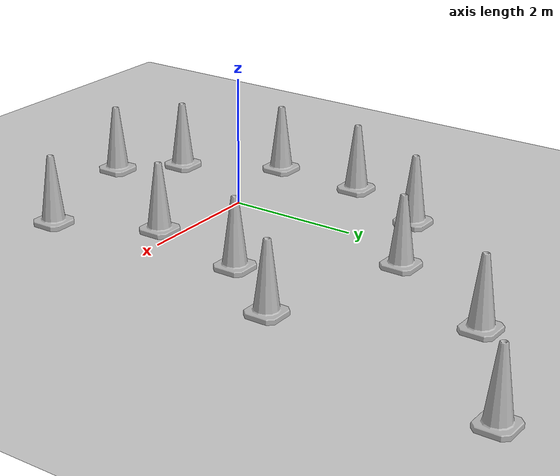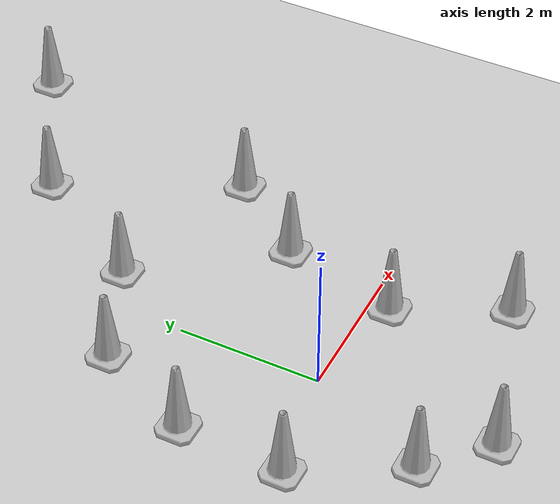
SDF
<sdf version="1.7">
 <world name="default">
  <light name="sun" type="directional">
   <pose>0 0 10 0 -0 0</pose>
   <diffuse>0.8 0.8 0.8 1</diffuse>
   <specular>0.2 0.2 0.2 1</specular>
   <attenuation>
    <range>1000</range>
    <constant>0.9</constant>
    <linear>0.01</linear>
    <quadratic>0.001</quadratic>
   </attenuation>
   <direction>-0.5 0.1 -0.9</direction>
   <spot><inner_angle>0</inner_angle><outer_angle>0</outer_angle><falloff>0</falloff></spot>
  </light>
  <model name="ground_plane">
   <static>1</static>
   <link name="link">
    <collision name="collision">
     <geometry><plane><normal>0 0 1</normal><size>100 100</size></plane></geometry>
     <surface><friction><ode><mu>100</mu><mu2>50</mu2></ode></friction></surface>
    </collision>
    <visual name="visual">
     <cast_shadows>0</cast_shadows>
     <geometry><plane><normal>0 0 1</normal><size>100 100</size></plane></geometry>
     <material>
      <script><uri>file://media/materials/scripts/gazebo.material</uri><name>Gazebo/Grey</name></script>
     </material>
    </visual>
   </link>
  </model>
  <gravity>0 0 -9.8</gravity>
  <magnetic_field>6e-06 2.3e-05 -4.2e-05</magnetic_field>
  <atmosphere type="adiabatic"/>
  <physics type="ode">
   <max_step_size>0.001</max_step_size>
   <real_time_factor>1</real_time_factor>
   <real_time_update_rate>1000</real_time_update_rate>
  </physics>
  <scene><ambient>0.4 0.4 0.4 1</ambient><background>0.7 0.7 0.7 1</background><shadows>1</shadows></scene>
  <audio><device>default</device></audio>
  <spherical_coordinates>
   <surface_model>EARTH_WGS84</surface_model>
   <latitude_deg>0</latitude_deg>
   <longitude_deg>0</longitude_deg>
   <elevation>0</elevation>
   <heading_deg>0</heading_deg>
  </spherical_coordinates>
  <model name="Construction Cone">
   <link name="link">
    <collision name="collision">
     <geometry>
      <mesh><scale>10 10 10</scale><uri>model://construction_cone/meshes/construction_cone.dae</uri></mesh>
     </geometry>
    </collision>
    <visual name="visual">
     <geometry>
      <mesh><scale>10 10 10</scale><uri>model://construction_cone/meshes/construction_cone.dae</uri></mesh>
     </geometry>
    </visual>
    <inertial>
     <inertia><ixx>1</ixx><ixy>0</ixy><ixz>0</ixz><iyy>1</iyy><iyz>0</iyz><izz>1</izz></inertia>
     <mass>1</mass>
    </inertial>
   </link>
   <pose>1.58392 -0.291198 0 0 -0 0</pose>
  </model>
  <model name="Construction Cone_0">
   <link name="link">
    <collision name="collision">
     <geometry>
      <mesh><scale>10 10 10</scale><uri>model://construction_cone/meshes/construction_cone.dae</uri></mesh>
     </geometry>
    </collision>
    <visual name="visual">
     <geometry>
      <mesh><scale>10 10 10</scale><uri>model://construction_cone/meshes/construction_cone.dae</uri></mesh>
     </geometry>
    </visual>
    <inertial>
     <inertia><ixx>1</ixx><ixy>0</ixy><ixz>0</ixz><iyy>1</iyy><iyz>0</iyz><izz>1</izz></inertia>
     <mass>1</mass>
    </inertial>
   </link>
   <pose>-1.56962 -0.280984 -0 0 0 -0.004116</pose>
  </model>
  <model name="Construction Cone_0_clone">
   <link name="link">
    <collision name="collision">
     <geometry>
      <mesh><scale>10 10 10</scale><uri>model://construction_cone/meshes/construction_cone.dae</uri></mesh>
     </geometry>
    </collision>
    <visual name="visual">
     <geometry>
      <mesh><scale>10 10 10</scale><uri>model://construction_cone/meshes/construction_cone.dae</uri></mesh>
     </geometry>
    </visual>
    <inertial>
     <inertia><ixx>1</ixx><ixy>0</ixy><ixz>0</ixz><iyy>1</iyy><iyz>0</iyz><izz>1</izz></inertia>
     <mass>1</mass>
    </inertial>
   </link>
   <pose>-1.51175 1.20086 -0 0 -0 0.002491</pose>
  </model>
  <model name="Construction Cone_0_clone_0">
   <link name="link">
    <collision name="collision">
     <geometry>
      <mesh><scale>10 10 10</scale><uri>model://construction_cone/meshes/construction_cone.dae</uri></mesh>
     </geometry>
    </collision>
    <visual name="visual">
     <geometry>
      <mesh><scale>10 10 10</scale><uri>model://construction_cone/meshes/construction_cone.dae</uri></mesh>
     </geometry>
    </visual>
    <inertial>
     <inertia><ixx>1</ixx><ixy>0</ixy><ixz>0</ixz><iyy>1</iyy><iyz>0</iyz><izz>1</izz></inertia>
     <mass>1</mass>
    </inertial>
   </link>
   <pose>-0.845651 2.60897 -1e-06 3e-06 -0 0</pose>
  </model>
  <model name="Construction Cone_0_clone_1">
   <link name="link">
    <collision name="collision">
     <geometry>
      <mesh><scale>10 10 10</scale><uri>model://construction_cone/meshes/construction_cone.dae</uri></mesh>
     </geometry>
    </collision>
    <visual name="visual">
     <geometry>
      <mesh><scale>10 10 10</scale><uri>model://construction_cone/meshes/construction_cone.dae</uri></mesh>
     </geometry>
    </visual>
    <inertial>
     <inertia><ixx>1</ixx><ixy>0</ixy><ixz>0</ixz><iyy>1</iyy><iyz>0</iyz><izz>1</izz></inertia>
     <mass>1</mass>
    </inertial>
   </link>
   <pose>0.59113 3.23534 -0 0 -1e-06 0</pose>
  </model>
  <model name="Construction Cone_0_clone_2">
   <link name="link">
    <collision name="collision">
     <geometry>
      <mesh><scale>10 10 10</scale><uri>model://construction_cone/meshes/construction_cone.dae</uri></mesh>
     </geometry>
    </collision>
    <visual name="visual">
     <geometry>
      <mesh><scale>10 10 10</scale><uri>model://construction_cone/meshes/construction_cone.dae</uri></mesh>
     </geometry>
    </visual>
    <inertial>
     <inertia><ixx>1</ixx><ixy>0</ixy><ixz>0</ixz><iyy>1</iyy><iyz>0</iyz><izz>1</izz></inertia>
     <mass>1</mass>
    </inertial>
   </link>
   <pose>1.98829 1.38298 -5e-06 4e-06 -0 0</pose>
  </model>
  <model name="Construction Cone_0_clone_3">
   <link name="link">
    <collision name="collision">
     <geometry>
      <mesh><scale>10 10 10</scale><uri>model://construction_cone/meshes/construction_cone.dae</uri></mesh>
     </geometry>
    </collision>
    <visual name="visual">
     <geometry>
      <mesh><scale>10 10 10</scale><uri>model://construction_cone/meshes/construction_cone.dae</uri></mesh>
     </geometry>
    </visual>
    <inertial>
     <inertia><ixx>1</ixx><ixy>0</ixy><ixz>0</ixz><iyy>1</iyy><iyz>0</iyz><izz>1</izz></inertia>
     <mass>1</mass>
    </inertial>
   </link>
   <pose>2.9071 2.56762 -0 0 -1e-06 0</pose>
  </model>
  <model name="Construction Cone_0_clone_4">
   <link name="link">
    <collision name="collision">
     <geometry>
      <mesh><scale>10 10 10</scale><uri>model://construction_cone/meshes/construction_cone.dae</uri></mesh>
     </geometry>
    </collision>
    <visual name="visual">
     <geometry>
      <mesh><scale>10 10 10</scale><uri>model://construction_cone/meshes/construction_cone.dae</uri></mesh>
     </geometry>
    </visual>
    <inertial>
     <inertia><ixx>1</ixx><ixy>0</ixy><ixz>0</ixz><iyy>1</iyy><iyz>0</iyz><izz>1</izz></inertia>
     <mass>1</mass>
    </inertial>
   </link>
   <pose>1.69152 5.03903 -0 0 -1e-06 0</pose>
  </model>
  <model name="Construction Cone_0_clone_5">
   <link name="link">
    <collision name="collision">
     <geometry>
      <mesh><scale>10 10 10</scale><uri>model://construction_cone/meshes/construction_cone.dae</uri></mesh>
     </geometry>
    </collision>
    <visual name="visual">
     <geometry>
      <mesh><scale>10 10 10</scale><uri>model://construction_cone/meshes/construction_cone.dae</uri></mesh>
     </geometry>
    </visual>
    <inertial>
     <inertia><ixx>1</ixx><ixy>0</ixy><ixz>0</ixz><iyy>1</iyy><iyz>0</iyz><izz>1</izz></inertia>
     <mass>1</mass>
    </inertial>
   </link>
   <pose>-0.766139 -1.69879 -0 0 -0 0</pose>
  </model>
  <model name="Construction Cone_0_clone_6">
   <link name="link">
    <collision name="collision">
     <geometry>
      <mesh><scale>10 10 10</scale><uri>model://construction_cone/meshes/construction_cone.dae</uri></mesh>
     </geometry>
    </collision>
    <visual name="visual">
     <geometry>
      <mesh><scale>10 10 10</scale><uri>model://construction_cone/meshes/construction_cone.dae</uri></mesh>
     </geometry>
    </visual>
    <inertial>
     <inertia><ixx>1</ixx><ixy>0</ixy><ixz>0</ixz><iyy>1</iyy><iyz>0</iyz><izz>1</izz></inertia>
     <mass>1</mass>
    </inertial>
   </link>
   <pose>0.011972 -2.44948 -0 0 -1e-06 0</pose>
  </model>
  <model name="Construction Cone_0_clone_7">
   <link name="link">
    <collision name="collision">
     <geometry>
      <mesh><scale>10 10 10</scale><uri>model://construction_cone/meshes/construction_cone.dae</uri></mesh>
     </geometry>
    </collision>
    <visual name="visual">
     <geometry>
      <mesh><scale>10 10 10</scale><uri>model://construction_cone/meshes/construction_cone.dae</uri></mesh>
     </geometry>
    </visual>
    <inertial>
     <inertia><ixx>1</ixx><ixy>0</ixy><ixz>0</ixz><iyy>1</iyy><iyz>0</iyz><izz>1</izz></inertia>
     <mass>1</mass>
    </inertial>
   </link>
   <pose>2.28223 -1.76061 -0 0 -1e-06 0</pose>
  </model>
  <model name="Construction Cone_0_clone_8">
   <link name="link">
    <collision name="collision">
     <geometry>
      <mesh><scale>10 10 10</scale><uri>model://construction_cone/meshes/construction_cone.dae</uri></mesh>
     </geometry>
    </collision>
    <visual name="visual">
     <geometry>
      <mesh><scale>10 10 10</scale><uri>model://construction_cone/meshes/construction_cone.dae</uri></mesh>
     </geometry>
    </visual>
    <inertial>
     <inertia><ixx>1</ixx><ixy>0</ixy><ixz>0</ixz><iyy>1</iyy><iyz>0</iyz><izz>1</izz></inertia>
     <mass>1</mass>
    </inertial>
   </link>
   <pose>3.6955 6.27179 -0 0 -1e-06 0</pose>
  </model>
 </world>
</sdf>
